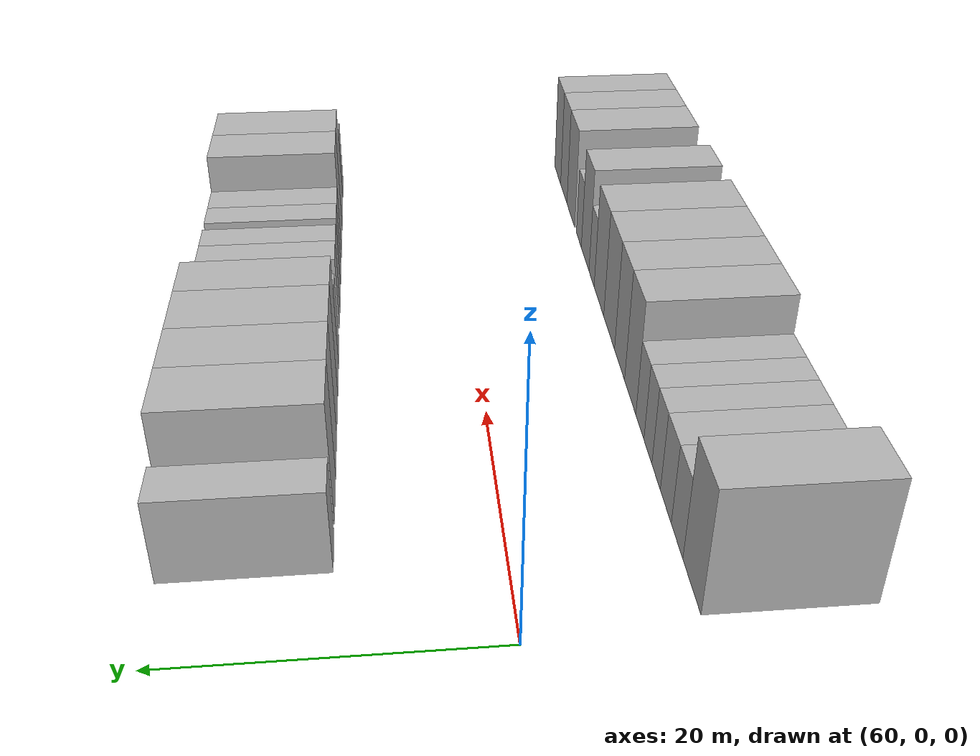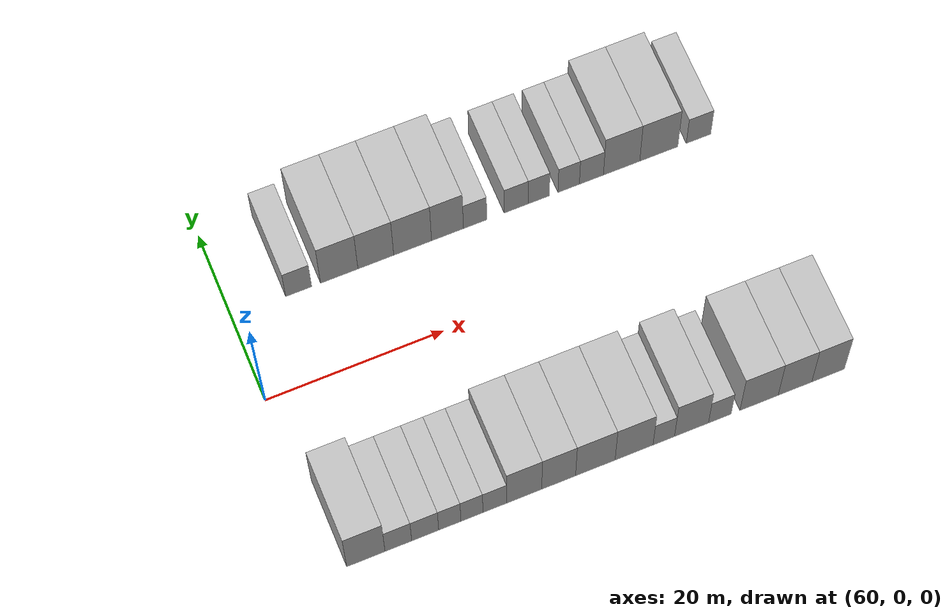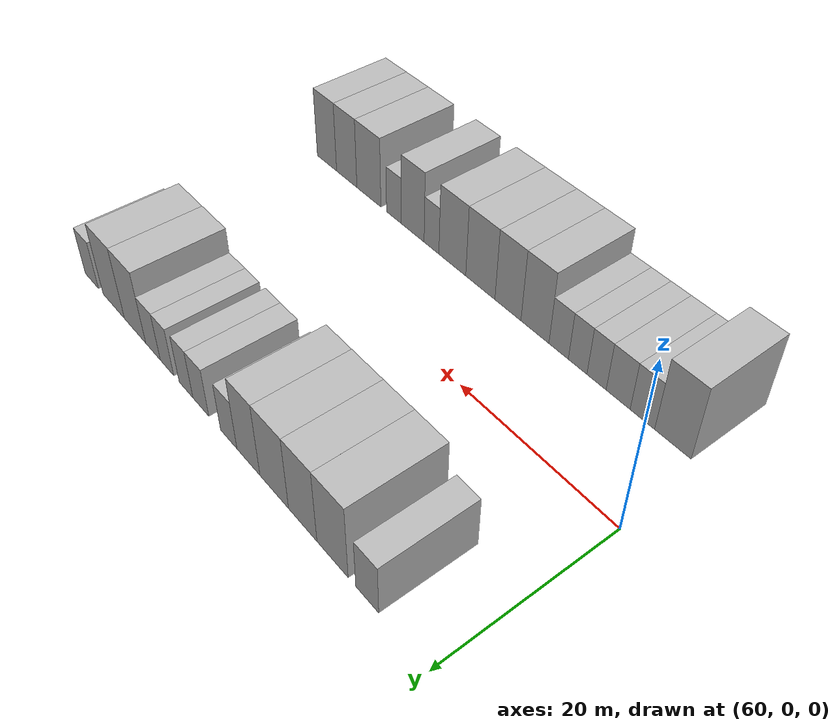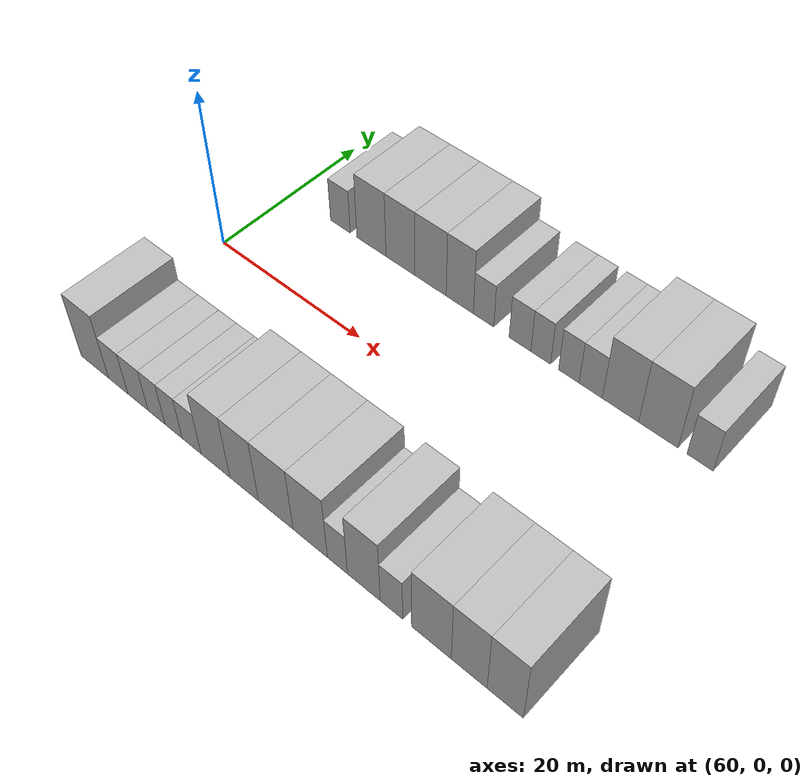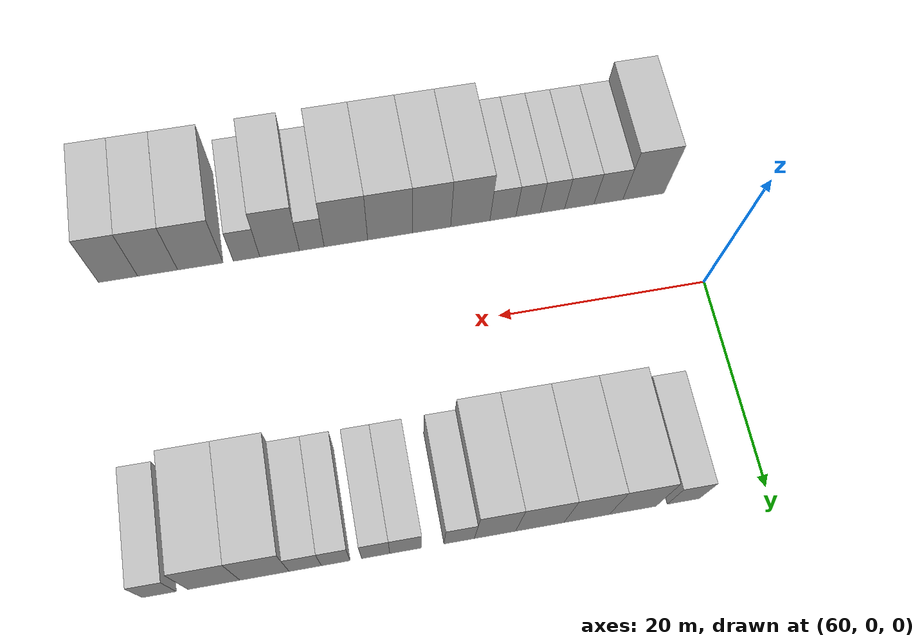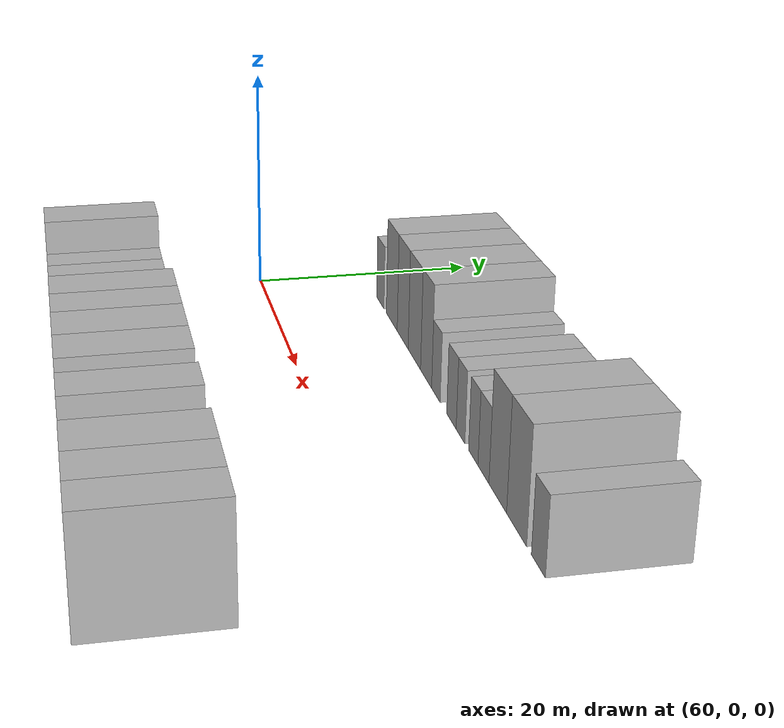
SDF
<sdf version="1.6">
 <world name="default">
  <model name="building_16">
   <static>1</static>
   <pose>67.5667 15.0000 0 0.000000 0.000000 1.570796</pose>
   <link name="link">
    <pose>0 0 3.00 0 0 0</pose>
    <collision name="collision"><geometry><box><size>10.0000 2.9419 6.0000</size></box></geometry></collision>
    <visual name="visual">
     <cast_shadows>0</cast_shadows>
     <geometry><box><size>10.0000 2.9419 6.0000</size></box></geometry>
     <material>
      <script>
       <uri>model://HANNAS_wall/materials/scripts</uri>
       <uri>model://HANNAS_wall/materials/textures</uri>
       <name>vrc/HANNAS_wall</name>
      </script>
     </material>
    </visual>
   </link>
  </model>
  <model name="building_17">
   <static>1</static>
   <pose>72.1605 15.0000 0 0.000000 0.000000 1.570796</pose>
   <link name="link">
    <pose>0 0 4.50 0 0 0</pose>
    <collision name="collision"><geometry><box><size>10.0000 4.2457 9.0000</size></box></geometry></collision>
    <visual name="visual">
     <cast_shadows>0</cast_shadows>
     <geometry><box><size>10.0000 4.2457 9.0000</size></box></geometry>
     <material>
      <script>
       <uri>model://HANNAS_wall/materials/scripts</uri>
       <uri>model://HANNAS_wall/materials/textures</uri>
       <name>vrc/HANNAS_wall</name>
      </script>
     </material>
    </visual>
   </link>
  </model>
  <model name="building_18">
   <static>1</static>
   <pose>76.3221 15.0000 0 0.000000 0.000000 1.570796</pose>
   <link name="link">
    <pose>0 0 4.50 0 0 0</pose>
    <collision name="collision"><geometry><box><size>10.0000 4.0774 9.0000</size></box></geometry></collision>
    <visual name="visual">
     <cast_shadows>0</cast_shadows>
     <geometry><box><size>10.0000 4.0774 9.0000</size></box></geometry>
     <material>
      <script>
       <uri>model://HANNAS_wall/materials/scripts</uri>
       <uri>model://HANNAS_wall/materials/textures</uri>
       <name>vrc/HANNAS_wall</name>
      </script>
     </material>
    </visual>
   </link>
  </model>
  <model name="building_19">
   <static>1</static>
   <pose>80.5234 15.0000 0 0.000000 0.000000 1.570796</pose>
   <link name="link">
    <pose>0 0 4.50 0 0 0</pose>
    <collision name="collision"><geometry><box><size>10.0000 4.3253 9.0000</size></box></geometry></collision>
    <visual name="visual">
     <cast_shadows>0</cast_shadows>
     <geometry><box><size>10.0000 4.3253 9.0000</size></box></geometry>
     <material>
      <script>
       <uri>model://HANNAS_wall/materials/scripts</uri>
       <uri>model://HANNAS_wall/materials/textures</uri>
       <name>vrc/HANNAS_wall</name>
      </script>
     </material>
    </visual>
   </link>
  </model>
  <model name="building_20">
   <static>1</static>
   <pose>84.5161 15.0000 0 0.000000 0.000000 1.570796</pose>
   <link name="link">
    <pose>0 0 4.50 0 0 0</pose>
    <collision name="collision"><geometry><box><size>10.0000 3.6600 9.0000</size></box></geometry></collision>
    <visual name="visual">
     <cast_shadows>0</cast_shadows>
     <geometry><box><size>10.0000 3.6600 9.0000</size></box></geometry>
     <material>
      <script>
       <uri>model://HANNAS_wall/materials/scripts</uri>
       <uri>model://HANNAS_wall/materials/textures</uri>
       <name>vrc/HANNAS_wall</name>
      </script>
     </material>
    </visual>
   </link>
  </model>
  <model name="building_21">
   <static>1</static>
   <pose>87.6903 15.0000 0 0.000000 0.000000 1.570796</pose>
   <link name="link">
    <pose>0 0 3.00 0 0 0</pose>
    <collision name="collision"><geometry><box><size>10.0000 2.6885 6.0000</size></box></geometry></collision>
    <visual name="visual">
     <cast_shadows>0</cast_shadows>
     <geometry><box><size>10.0000 2.6885 6.0000</size></box></geometry>
     <material>
      <script>
       <uri>model://HANNAS_wall/materials/scripts</uri>
       <uri>model://HANNAS_wall/materials/textures</uri>
       <name>vrc/HANNAS_wall</name>
      </script>
     </material>
    </visual>
   </link>
  </model>
  <model name="building_22">
   <static>1</static>
   <pose>92.4171 15.0000 0 0.000000 0.000000 1.570796</pose>
   <link name="link">
    <pose>0 0 3.00 0 0 0</pose>
    <collision name="collision"><geometry><box><size>10.0000 2.7649 6.0000</size></box></geometry></collision>
    <visual name="visual">
     <cast_shadows>0</cast_shadows>
     <geometry><box><size>10.0000 2.7649 6.0000</size></box></geometry>
     <material>
      <script>
       <uri>model://HANNAS_wall/materials/scripts</uri>
       <uri>model://HANNAS_wall/materials/textures</uri>
       <name>vrc/HANNAS_wall</name>
      </script>
     </material>
    </visual>
   </link>
  </model>
  <model name="building_23">
   <static>1</static>
   <pose>95.0302 15.0000 0 0.000000 0.000000 1.570796</pose>
   <link name="link">
    <pose>0 0 3.00 0 0 0</pose>
    <collision name="collision"><geometry><box><size>10.0000 2.4614 6.0000</size></box></geometry></collision>
    <visual name="visual">
     <cast_shadows>0</cast_shadows>
     <geometry><box><size>10.0000 2.4614 6.0000</size></box></geometry>
     <material>
      <script>
       <uri>model://HANNAS_wall/materials/scripts</uri>
       <uri>model://HANNAS_wall/materials/textures</uri>
       <name>vrc/HANNAS_wall</name>
      </script>
     </material>
    </visual>
   </link>
  </model>
  <model name="building_24">
   <static>1</static>
   <pose>98.5067 15.0000 0 0.000000 0.000000 1.570796</pose>
   <link name="link">
    <pose>0 0 3.00 0 0 0</pose>
    <collision name="collision"><geometry><box><size>10.0000 2.4915 6.0000</size></box></geometry></collision>
    <visual name="visual">
     <cast_shadows>0</cast_shadows>
     <geometry><box><size>10.0000 2.4915 6.0000</size></box></geometry>
     <material>
      <script>
       <uri>model://HANNAS_wall/materials/scripts</uri>
       <uri>model://HANNAS_wall/materials/textures</uri>
       <name>vrc/HANNAS_wall</name>
      </script>
     </material>
    </visual>
   </link>
  </model>
  <model name="building_25">
   <static>1</static>
   <pose>101.1531 15.0000 0 0.000000 0.000000 1.570796</pose>
   <link name="link">
    <pose>0 0 3.00 0 0 0</pose>
    <collision name="collision"><geometry><box><size>10.0000 2.8013 6.0000</size></box></geometry></collision>
    <visual name="visual">
     <cast_shadows>0</cast_shadows>
     <geometry><box><size>10.0000 2.8013 6.0000</size></box></geometry>
     <material>
      <script>
       <uri>model://HANNAS_wall/materials/scripts</uri>
       <uri>model://HANNAS_wall/materials/textures</uri>
       <name>vrc/HANNAS_wall</name>
      </script>
     </material>
    </visual>
   </link>
  </model>
  <model name="building_26">
   <static>1</static>
   <pose>104.6745 15.0000 0 0.000000 0.000000 1.570796</pose>
   <link name="link">
    <pose>0 0 4.50 0 0 0</pose>
    <collision name="collision"><geometry><box><size>10.0000 4.2414 9.0000</size></box></geometry></collision>
    <visual name="visual">
     <cast_shadows>0</cast_shadows>
     <geometry><box><size>10.0000 4.2414 9.0000</size></box></geometry>
     <material>
      <script>
       <uri>model://HANNAS_wall/materials/scripts</uri>
       <uri>model://HANNAS_wall/materials/textures</uri>
       <name>vrc/HANNAS_wall</name>
      </script>
     </material>
    </visual>
   </link>
  </model>
  <model name="building_27">
   <static>1</static>
   <pose>109.0264 15.0000 0 0.000000 0.000000 1.570796</pose>
   <link name="link">
    <pose>0 0 4.50 0 0 0</pose>
    <collision name="collision"><geometry><box><size>10.0000 4.4623 9.0000</size></box></geometry></collision>
    <visual name="visual">
     <cast_shadows>0</cast_shadows>
     <geometry><box><size>10.0000 4.4623 9.0000</size></box></geometry>
     <material>
      <script>
       <uri>model://HANNAS_wall/materials/scripts</uri>
       <uri>model://HANNAS_wall/materials/textures</uri>
       <name>vrc/HANNAS_wall</name>
      </script>
     </material>
    </visual>
   </link>
  </model>
  <model name="building_28">
   <static>1</static>
   <pose>113.6944 15.0000 0 0.000000 0.000000 1.570796</pose>
   <link name="link">
    <pose>0 0 3.00 0 0 0</pose>
    <collision name="collision"><geometry><box><size>10.0000 2.8739 6.0000</size></box></geometry></collision>
    <visual name="visual">
     <cast_shadows>0</cast_shadows>
     <geometry><box><size>10.0000 2.8739 6.0000</size></box></geometry>
     <material>
      <script>
       <uri>model://HANNAS_wall/materials/scripts</uri>
       <uri>model://HANNAS_wall/materials/textures</uri>
       <name>vrc/HANNAS_wall</name>
      </script>
     </material>
    </visual>
   </link>
  </model>
  <model name="building_70">
   <static>1</static>
   <pose>63.3466 -15.0000 0 0.000000 0.000000 1.570796</pose>
   <link name="link">
    <pose>0 0 4.50 0 0 0</pose>
    <collision name="collision"><geometry><box><size>10.0000 4.2040 9.0000</size></box></geometry></collision>
    <visual name="visual">
     <cast_shadows>0</cast_shadows>
     <geometry><box><size>10.0000 4.2040 9.0000</size></box></geometry>
     <material>
      <script>
       <uri>model://HANNAS_wall/materials/scripts</uri>
       <uri>model://HANNAS_wall/materials/textures</uri>
       <name>vrc/HANNAS_wall</name>
      </script>
     </material>
    </visual>
   </link>
  </model>
  <model name="building_71">
   <static>1</static>
   <pose>66.9137 -15.0000 0 0.000000 0.000000 1.570796</pose>
   <link name="link">
    <pose>0 0 3.00 0 0 0</pose>
    <collision name="collision"><geometry><box><size>10.0000 2.9303 6.0000</size></box></geometry></collision>
    <visual name="visual">
     <cast_shadows>0</cast_shadows>
     <geometry><box><size>10.0000 2.9303 6.0000</size></box></geometry>
     <material>
      <script>
       <uri>model://HANNAS_wall/materials/scripts</uri>
       <uri>model://HANNAS_wall/materials/textures</uri>
       <name>vrc/HANNAS_wall</name>
      </script>
     </material>
    </visual>
   </link>
  </model>
  <model name="building_72">
   <static>1</static>
   <pose>69.8640 -15.0000 0 0.000000 0.000000 1.570796</pose>
   <link name="link">
    <pose>0 0 3.00 0 0 0</pose>
    <collision name="collision"><geometry><box><size>10.0000 2.9703 6.0000</size></box></geometry></collision>
    <visual name="visual">
     <cast_shadows>0</cast_shadows>
     <geometry><box><size>10.0000 2.9703 6.0000</size></box></geometry>
     <material>
      <script>
       <uri>model://HANNAS_wall/materials/scripts</uri>
       <uri>model://HANNAS_wall/materials/textures</uri>
       <name>vrc/HANNAS_wall</name>
      </script>
     </material>
    </visual>
   </link>
  </model>
  <model name="building_73">
   <static>1</static>
   <pose>72.5746 -15.0000 0 0.000000 0.000000 1.570796</pose>
   <link name="link">
    <pose>0 0 3.00 0 0 0</pose>
    <collision name="collision"><geometry><box><size>10.0000 2.4508 6.0000</size></box></geometry></collision>
    <visual name="visual">
     <cast_shadows>0</cast_shadows>
     <geometry><box><size>10.0000 2.4508 6.0000</size></box></geometry>
     <material>
      <script>
       <uri>model://HANNAS_wall/materials/scripts</uri>
       <uri>model://HANNAS_wall/materials/textures</uri>
       <name>vrc/HANNAS_wall</name>
      </script>
     </material>
    </visual>
   </link>
  </model>
  <model name="building_74">
   <static>1</static>
   <pose>75.0219 -15.0000 0 0.000000 0.000000 1.570796</pose>
   <link name="link">
    <pose>0 0 3.00 0 0 0</pose>
    <collision name="collision"><geometry><box><size>10.0000 2.4439 6.0000</size></box></geometry></collision>
    <visual name="visual">
     <cast_shadows>0</cast_shadows>
     <geometry><box><size>10.0000 2.4439 6.0000</size></box></geometry>
     <material>
      <script>
       <uri>model://HANNAS_wall/materials/scripts</uri>
       <uri>model://HANNAS_wall/materials/textures</uri>
       <name>vrc/HANNAS_wall</name>
      </script>
     </material>
    </visual>
   </link>
  </model>
  <model name="building_75">
   <static>1</static>
   <pose>77.5524 -15.0000 0 0.000000 0.000000 1.570796</pose>
   <link name="link">
    <pose>0 0 3.00 0 0 0</pose>
    <collision name="collision"><geometry><box><size>10.0000 2.6172 6.0000</size></box></geometry></collision>
    <visual name="visual">
     <cast_shadows>0</cast_shadows>
     <geometry><box><size>10.0000 2.6172 6.0000</size></box></geometry>
     <material>
      <script>
       <uri>model://HANNAS_wall/materials/scripts</uri>
       <uri>model://HANNAS_wall/materials/textures</uri>
       <name>vrc/HANNAS_wall</name>
      </script>
     </material>
    </visual>
   </link>
  </model>
  <model name="building_76">
   <static>1</static>
   <pose>80.8176 -15.0000 0 0.000000 0.000000 1.570796</pose>
   <link name="link">
    <pose>0 0 4.50 0 0 0</pose>
    <collision name="collision"><geometry><box><size>10.0000 3.9131 9.0000</size></box></geometry></collision>
    <visual name="visual">
     <cast_shadows>0</cast_shadows>
     <geometry><box><size>10.0000 3.9131 9.0000</size></box></geometry>
     <material>
      <script>
       <uri>model://HANNAS_wall/materials/scripts</uri>
       <uri>model://HANNAS_wall/materials/textures</uri>
       <name>vrc/HANNAS_wall</name>
      </script>
     </material>
    </visual>
   </link>
  </model>
  <model name="building_77">
   <static>1</static>
   <pose>84.6668 -15.0000 0 0.000000 0.000000 1.570796</pose>
   <link name="link">
    <pose>0 0 4.50 0 0 0</pose>
    <collision name="collision"><geometry><box><size>10.0000 3.7854 9.0000</size></box></geometry></collision>
    <visual name="visual">
     <cast_shadows>0</cast_shadows>
     <geometry><box><size>10.0000 3.7854 9.0000</size></box></geometry>
     <material>
      <script>
       <uri>model://HANNAS_wall/materials/scripts</uri>
       <uri>model://HANNAS_wall/materials/textures</uri>
       <name>vrc/HANNAS_wall</name>
      </script>
     </material>
    </visual>
   </link>
  </model>
  <model name="building_78">
   <static>1</static>
   <pose>88.7731 -15.0000 0 0.000000 0.000000 1.570796</pose>
   <link name="link">
    <pose>0 0 4.50 0 0 0</pose>
    <collision name="collision"><geometry><box><size>10.0000 4.4270 9.0000</size></box></geometry></collision>
    <visual name="visual">
     <cast_shadows>0</cast_shadows>
     <geometry><box><size>10.0000 4.4270 9.0000</size></box></geometry>
     <material>
      <script>
       <uri>model://HANNAS_wall/materials/scripts</uri>
       <uri>model://HANNAS_wall/materials/textures</uri>
       <name>vrc/HANNAS_wall</name>
      </script>
     </material>
    </visual>
   </link>
  </model>
  <model name="building_79">
   <static>1</static>
   <pose>93.1212 -15.0000 0 0.000000 0.000000 1.570796</pose>
   <link name="link">
    <pose>0 0 4.50 0 0 0</pose>
    <collision name="collision"><geometry><box><size>10.0000 4.2693 9.0000</size></box></geometry></collision>
    <visual name="visual">
     <cast_shadows>0</cast_shadows>
     <geometry><box><size>10.0000 4.2693 9.0000</size></box></geometry>
     <material>
      <script>
       <uri>model://HANNAS_wall/materials/scripts</uri>
       <uri>model://HANNAS_wall/materials/textures</uri>
       <name>vrc/HANNAS_wall</name>
      </script>
     </material>
    </visual>
   </link>
  </model>
  <model name="building_80">
   <static>1</static>
   <pose>96.4669 -15.0000 0 0.000000 0.000000 1.570796</pose>
   <link name="link">
    <pose>0 0 3.00 0 0 0</pose>
    <collision name="collision"><geometry><box><size>10.0000 2.4221 6.0000</size></box></geometry></collision>
    <visual name="visual">
     <cast_shadows>0</cast_shadows>
     <geometry><box><size>10.0000 2.4221 6.0000</size></box></geometry>
     <material>
      <script>
       <uri>model://HANNAS_wall/materials/scripts</uri>
       <uri>model://HANNAS_wall/materials/textures</uri>
       <name>vrc/HANNAS_wall</name>
      </script>
     </material>
    </visual>
   </link>
  </model>
  <model name="building_81">
   <static>1</static>
   <pose>99.6035 -15.0000 0 0.000000 0.000000 1.570796</pose>
   <link name="link">
    <pose>0 0 4.50 0 0 0</pose>
    <collision name="collision"><geometry><box><size>10.0000 3.8511 9.0000</size></box></geometry></collision>
    <visual name="visual">
     <cast_shadows>0</cast_shadows>
     <geometry><box><size>10.0000 3.8511 9.0000</size></box></geometry>
     <material>
      <script>
       <uri>model://HANNAS_wall/materials/scripts</uri>
       <uri>model://HANNAS_wall/materials/textures</uri>
       <name>vrc/HANNAS_wall</name>
      </script>
     </material>
    </visual>
   </link>
  </model>
  <model name="building_82">
   <static>1</static>
   <pose>102.8183 -15.0000 0 0.000000 0.000000 1.570796</pose>
   <link name="link">
    <pose>0 0 3.00 0 0 0</pose>
    <collision name="collision"><geometry><box><size>10.0000 2.5785 6.0000</size></box></geometry></collision>
    <visual name="visual">
     <cast_shadows>0</cast_shadows>
     <geometry><box><size>10.0000 2.5785 6.0000</size></box></geometry>
     <material>
      <script>
       <uri>model://HANNAS_wall/materials/scripts</uri>
       <uri>model://HANNAS_wall/materials/textures</uri>
       <name>vrc/HANNAS_wall</name>
      </script>
     </material>
    </visual>
   </link>
  </model>
  <model name="building_83">
   <static>1</static>
   <pose>107.2950 -15.0000 0 0.000000 0.000000 1.570796</pose>
   <link name="link">
    <pose>0 0 4.50 0 0 0</pose>
    <collision name="collision"><geometry><box><size>10.0000 4.3750 9.0000</size></box></geometry></collision>
    <visual name="visual">
     <cast_shadows>0</cast_shadows>
     <geometry><box><size>10.0000 4.3750 9.0000</size></box></geometry>
     <material>
      <script>
       <uri>model://HANNAS_wall/materials/scripts</uri>
       <uri>model://HANNAS_wall/materials/textures</uri>
       <name>vrc/HANNAS_wall</name>
      </script>
     </material>
    </visual>
   </link>
  </model>
  <model name="building_84">
   <static>1</static>
   <pose>111.3980 -15.0000 0 0.000000 0.000000 1.570796</pose>
   <link name="link">
    <pose>0 0 4.50 0 0 0</pose>
    <collision name="collision"><geometry><box><size>10.0000 3.8309 9.0000</size></box></geometry></collision>
    <visual name="visual">
     <cast_shadows>0</cast_shadows>
     <geometry><box><size>10.0000 3.8309 9.0000</size></box></geometry>
     <material>
      <script>
       <uri>model://HANNAS_wall/materials/scripts</uri>
       <uri>model://HANNAS_wall/materials/textures</uri>
       <name>vrc/HANNAS_wall</name>
      </script>
     </material>
    </visual>
   </link>
  </model>
  <model name="building_85">
   <static>1</static>
   <pose>115.1878 -15.0000 0 0.000000 0.000000 1.570796</pose>
   <link name="link">
    <pose>0 0 4.50 0 0 0</pose>
    <collision name="collision"><geometry><box><size>10.0000 3.7488 9.0000</size></box></geometry></collision>
    <visual name="visual">
     <cast_shadows>0</cast_shadows>
     <geometry><box><size>10.0000 3.7488 9.0000</size></box></geometry>
     <material>
      <script>
       <uri>model://HANNAS_wall/materials/scripts</uri>
       <uri>model://HANNAS_wall/materials/textures</uri>
       <name>vrc/HANNAS_wall</name>
      </script>
     </material>
    </visual>
   </link>
  </model>
 </world>
</sdf>
